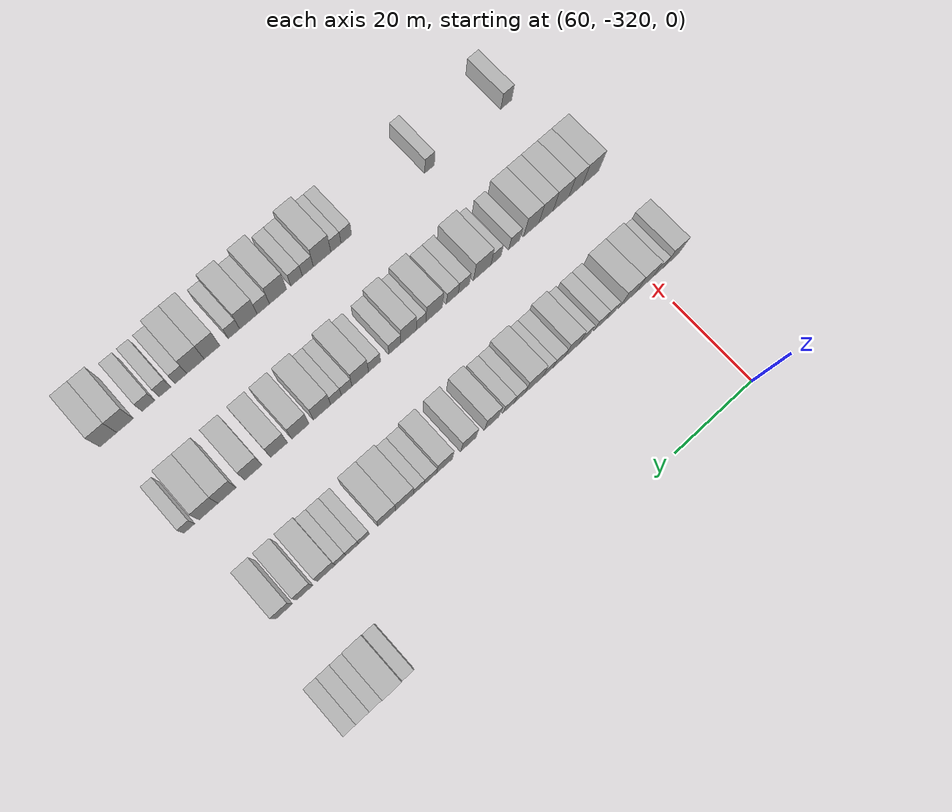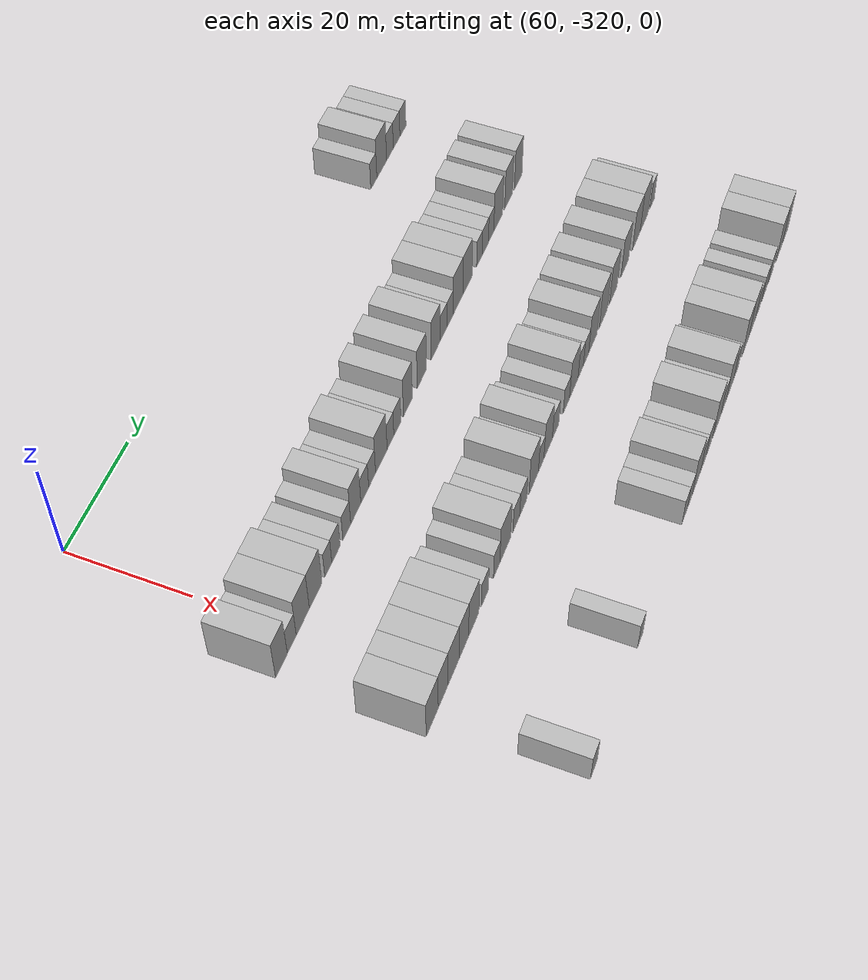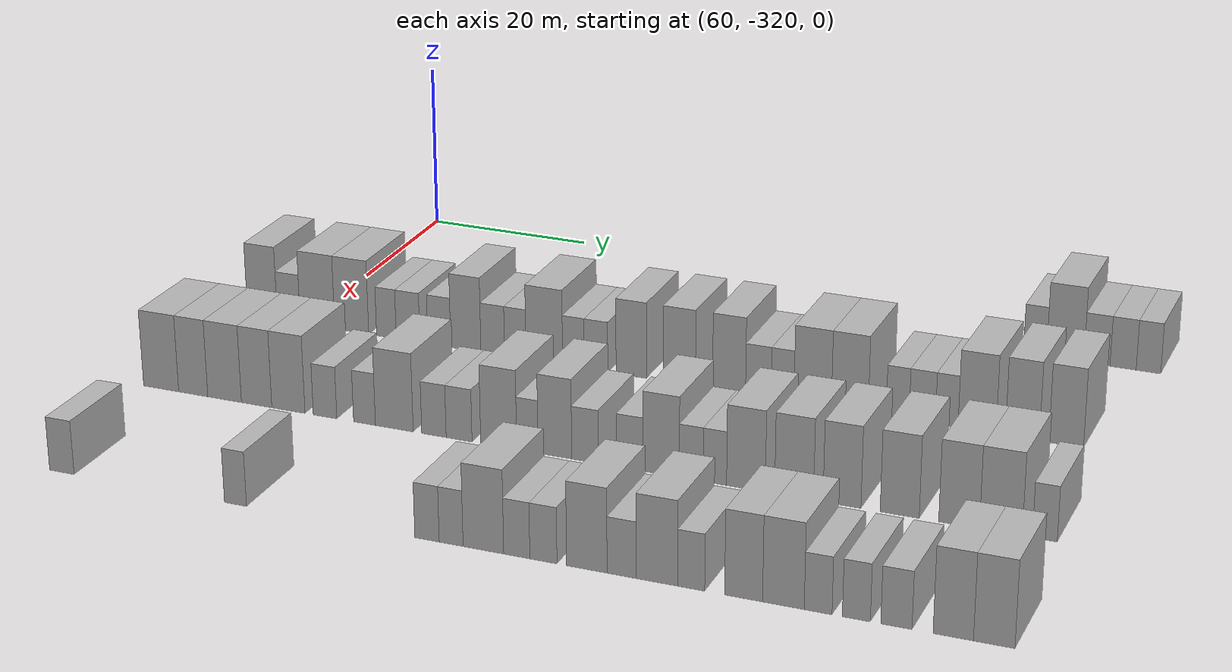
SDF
<sdf version="1.6">
 <world name="default">
  <model name="building_433">
   <static>1</static>
   <pose>69.0000 -239.2810 0 0.000000 0.000000 0.000000</pose>
   <link name="link">
    <pose>0 0 3.00 0 0 0</pose>
    <collision name="collision"><geometry><box><size>10.0000 2.6470 6.0000</size></box></geometry></collision>
    <visual name="visual">
     <cast_shadows>0</cast_shadows>
     <geometry><box><size>10.0000 2.6470 6.0000</size></box></geometry>
     <material>
      <script>
       <uri>model://HANNAS_wall/materials/scripts</uri>
       <uri>model://HANNAS_wall/materials/textures</uri>
       <name>vrc/HANNAS_wall</name>
      </script>
     </material>
    </visual>
   </link>
  </model>
  <model name="building_434">
   <static>1</static>
   <pose>69.0000 -235.8246 0 0.000000 0.000000 0.000000</pose>
   <link name="link">
    <pose>0 0 4.50 0 0 0</pose>
    <collision name="collision"><geometry><box><size>10.0000 4.2658 9.0000</size></box></geometry></collision>
    <visual name="visual">
     <cast_shadows>0</cast_shadows>
     <geometry><box><size>10.0000 4.2658 9.0000</size></box></geometry>
     <material>
      <script>
       <uri>model://HANNAS_wall/materials/scripts</uri>
       <uri>model://HANNAS_wall/materials/textures</uri>
       <name>vrc/HANNAS_wall</name>
      </script>
     </material>
    </visual>
   </link>
  </model>
  <model name="building_435">
   <static>1</static>
   <pose>69.0000 -232.2109 0 0.000000 0.000000 0.000000</pose>
   <link name="link">
    <pose>0 0 3.00 0 0 0</pose>
    <collision name="collision"><geometry><box><size>10.0000 2.9615 6.0000</size></box></geometry></collision>
    <visual name="visual">
     <cast_shadows>0</cast_shadows>
     <geometry><box><size>10.0000 2.9615 6.0000</size></box></geometry>
     <material>
      <script>
       <uri>model://HANNAS_wall/materials/scripts</uri>
       <uri>model://HANNAS_wall/materials/textures</uri>
       <name>vrc/HANNAS_wall</name>
      </script>
     </material>
    </visual>
   </link>
  </model>
  <model name="building_436">
   <static>1</static>
   <pose>69.0000 -229.2558 0 0.000000 0.000000 0.000000</pose>
   <link name="link">
    <pose>0 0 3.00 0 0 0</pose>
    <collision name="collision"><geometry><box><size>10.0000 2.9486 6.0000</size></box></geometry></collision>
    <visual name="visual">
     <cast_shadows>0</cast_shadows>
     <geometry><box><size>10.0000 2.9486 6.0000</size></box></geometry>
     <material>
      <script>
       <uri>model://HANNAS_wall/materials/scripts</uri>
       <uri>model://HANNAS_wall/materials/textures</uri>
       <name>vrc/HANNAS_wall</name>
      </script>
     </material>
    </visual>
   </link>
  </model>
  <model name="building_437">
   <static>1</static>
   <pose>69.0000 -226.4061 0 0.000000 0.000000 0.000000</pose>
   <link name="link">
    <pose>0 0 3.00 0 0 0</pose>
    <collision name="collision"><geometry><box><size>10.0000 2.7508 6.0000</size></box></geometry></collision>
    <visual name="visual">
     <cast_shadows>0</cast_shadows>
     <geometry><box><size>10.0000 2.7508 6.0000</size></box></geometry>
     <material>
      <script>
       <uri>model://HANNAS_wall/materials/scripts</uri>
       <uri>model://HANNAS_wall/materials/textures</uri>
       <name>vrc/HANNAS_wall</name>
      </script>
     </material>
    </visual>
   </link>
  </model>
  <model name="building_587">
   <static>1</static>
   <pose>91.0000 -325.4623 0 0.000000 0.000000 0.000000</pose>
   <link name="link">
    <pose>0 0 4.50 0 0 0</pose>
    <collision name="collision"><geometry><box><size>10.0000 3.8880 9.0000</size></box></geometry></collision>
    <visual name="visual">
     <cast_shadows>0</cast_shadows>
     <geometry><box><size>10.0000 3.8880 9.0000</size></box></geometry>
     <material>
      <script>
       <uri>model://HANNAS_wall/materials/scripts</uri>
       <uri>model://HANNAS_wall/materials/textures</uri>
       <name>vrc/HANNAS_wall</name>
      </script>
     </material>
    </visual>
   </link>
  </model>
  <model name="building_588">
   <static>1</static>
   <pose>91.0000 -322.0271 0 0.000000 0.000000 0.000000</pose>
   <link name="link">
    <pose>0 0 3.00 0 0 0</pose>
    <collision name="collision"><geometry><box><size>10.0000 2.9823 6.0000</size></box></geometry></collision>
    <visual name="visual">
     <cast_shadows>0</cast_shadows>
     <geometry><box><size>10.0000 2.9823 6.0000</size></box></geometry>
     <material>
      <script>
       <uri>model://HANNAS_wall/materials/scripts</uri>
       <uri>model://HANNAS_wall/materials/textures</uri>
       <name>vrc/HANNAS_wall</name>
      </script>
     </material>
    </visual>
   </link>
  </model>
  <model name="building_589">
   <static>1</static>
   <pose>91.0000 -318.3055 0 0.000000 0.000000 0.000000</pose>
   <link name="link">
    <pose>0 0 4.50 0 0 0</pose>
    <collision name="collision"><geometry><box><size>10.0000 4.4608 9.0000</size></box></geometry></collision>
    <visual name="visual">
     <cast_shadows>0</cast_shadows>
     <geometry><box><size>10.0000 4.4608 9.0000</size></box></geometry>
     <material>
      <script>
       <uri>model://HANNAS_wall/materials/scripts</uri>
       <uri>model://HANNAS_wall/materials/textures</uri>
       <name>vrc/HANNAS_wall</name>
      </script>
     </material>
    </visual>
   </link>
  </model>
  <model name="building_590">
   <static>1</static>
   <pose>91.0000 -313.8993 0 0.000000 0.000000 0.000000</pose>
   <link name="link">
    <pose>0 0 4.50 0 0 0</pose>
    <collision name="collision"><geometry><box><size>10.0000 4.3515 9.0000</size></box></geometry></collision>
    <visual name="visual">
     <cast_shadows>0</cast_shadows>
     <geometry><box><size>10.0000 4.3515 9.0000</size></box></geometry>
     <material>
      <script>
       <uri>model://HANNAS_wall/materials/scripts</uri>
       <uri>model://HANNAS_wall/materials/textures</uri>
       <name>vrc/HANNAS_wall</name>
      </script>
     </material>
    </visual>
   </link>
  </model>
  <model name="building_591">
   <static>1</static>
   <pose>91.0000 -309.4778 0 0.000000 0.000000 0.000000</pose>
   <link name="link">
    <pose>0 0 3.00 0 0 0</pose>
    <collision name="collision"><geometry><box><size>10.0000 2.4915 6.0000</size></box></geometry></collision>
    <visual name="visual">
     <cast_shadows>0</cast_shadows>
     <geometry><box><size>10.0000 2.4915 6.0000</size></box></geometry>
     <material>
      <script>
       <uri>model://HANNAS_wall/materials/scripts</uri>
       <uri>model://HANNAS_wall/materials/textures</uri>
       <name>vrc/HANNAS_wall</name>
      </script>
     </material>
    </visual>
   </link>
  </model>
  <model name="building_592">
   <static>1</static>
   <pose>91.0000 -306.7409 0 0.000000 0.000000 0.000000</pose>
   <link name="link">
    <pose>0 0 3.00 0 0 0</pose>
    <collision name="collision"><geometry><box><size>10.0000 2.9823 6.0000</size></box></geometry></collision>
    <visual name="visual">
     <cast_shadows>0</cast_shadows>
     <geometry><box><size>10.0000 2.9823 6.0000</size></box></geometry>
     <material>
      <script>
       <uri>model://HANNAS_wall/materials/scripts</uri>
       <uri>model://HANNAS_wall/materials/textures</uri>
       <name>vrc/HANNAS_wall</name>
      </script>
     </material>
    </visual>
   </link>
  </model>
  <model name="building_593">
   <static>1</static>
   <pose>91.0000 -302.8142 0 0.000000 0.000000 0.000000</pose>
   <link name="link">
    <pose>0 0 3.00 0 0 0</pose>
    <collision name="collision"><geometry><box><size>10.0000 2.8712 6.0000</size></box></geometry></collision>
    <visual name="visual">
     <cast_shadows>0</cast_shadows>
     <geometry><box><size>10.0000 2.8712 6.0000</size></box></geometry>
     <material>
      <script>
       <uri>model://HANNAS_wall/materials/scripts</uri>
       <uri>model://HANNAS_wall/materials/textures</uri>
       <name>vrc/HANNAS_wall</name>
      </script>
     </material>
    </visual>
   </link>
  </model>
  <model name="building_594">
   <static>1</static>
   <pose>91.0000 -299.5078 0 0.000000 0.000000 0.000000</pose>
   <link name="link">
    <pose>0 0 4.50 0 0 0</pose>
    <collision name="collision"><geometry><box><size>10.0000 3.7418 9.0000</size></box></geometry></collision>
    <visual name="visual">
     <cast_shadows>0</cast_shadows>
     <geometry><box><size>10.0000 3.7418 9.0000</size></box></geometry>
     <material>
      <script>
       <uri>model://HANNAS_wall/materials/scripts</uri>
       <uri>model://HANNAS_wall/materials/textures</uri>
       <name>vrc/HANNAS_wall</name>
      </script>
     </material>
    </visual>
   </link>
  </model>
  <model name="building_595">
   <static>1</static>
   <pose>91.0000 -296.1790 0 0.000000 0.000000 0.000000</pose>
   <link name="link">
    <pose>0 0 3.00 0 0 0</pose>
    <collision name="collision"><geometry><box><size>10.0000 2.9157 6.0000</size></box></geometry></collision>
    <visual name="visual">
     <cast_shadows>0</cast_shadows>
     <geometry><box><size>10.0000 2.9157 6.0000</size></box></geometry>
     <material>
      <script>
       <uri>model://HANNAS_wall/materials/scripts</uri>
       <uri>model://HANNAS_wall/materials/textures</uri>
       <name>vrc/HANNAS_wall</name>
      </script>
     </material>
    </visual>
   </link>
  </model>
  <model name="building_596">
   <static>1</static>
   <pose>91.0000 -293.4072 0 0.000000 0.000000 0.000000</pose>
   <link name="link">
    <pose>0 0 3.00 0 0 0</pose>
    <collision name="collision"><geometry><box><size>10.0000 2.6279 6.0000</size></box></geometry></collision>
    <visual name="visual">
     <cast_shadows>0</cast_shadows>
     <geometry><box><size>10.0000 2.6279 6.0000</size></box></geometry>
     <material>
      <script>
       <uri>model://HANNAS_wall/materials/scripts</uri>
       <uri>model://HANNAS_wall/materials/textures</uri>
       <name>vrc/HANNAS_wall</name>
      </script>
     </material>
    </visual>
   </link>
  </model>
  <model name="building_597">
   <static>1</static>
   <pose>91.0000 -289.8665 0 0.000000 0.000000 0.000000</pose>
   <link name="link">
    <pose>0 0 4.50 0 0 0</pose>
    <collision name="collision"><geometry><box><size>10.0000 4.4535 9.0000</size></box></geometry></collision>
    <visual name="visual">
     <cast_shadows>0</cast_shadows>
     <geometry><box><size>10.0000 4.4535 9.0000</size></box></geometry>
     <material>
      <script>
       <uri>model://HANNAS_wall/materials/scripts</uri>
       <uri>model://HANNAS_wall/materials/textures</uri>
       <name>vrc/HANNAS_wall</name>
      </script>
     </material>
    </visual>
   </link>
  </model>
  <model name="building_598">
   <static>1</static>
   <pose>91.0000 -286.3294 0 0.000000 0.000000 0.000000</pose>
   <link name="link">
    <pose>0 0 3.00 0 0 0</pose>
    <collision name="collision"><geometry><box><size>10.0000 2.6208 6.0000</size></box></geometry></collision>
    <visual name="visual">
     <cast_shadows>0</cast_shadows>
     <geometry><box><size>10.0000 2.6208 6.0000</size></box></geometry>
     <material>
      <script>
       <uri>model://HANNAS_wall/materials/scripts</uri>
       <uri>model://HANNAS_wall/materials/textures</uri>
       <name>vrc/HANNAS_wall</name>
      </script>
     </material>
    </visual>
   </link>
  </model>
  <model name="building_599">
   <static>1</static>
   <pose>91.0000 -283.6147 0 0.000000 0.000000 0.000000</pose>
   <link name="link">
    <pose>0 0 3.00 0 0 0</pose>
    <collision name="collision"><geometry><box><size>10.0000 2.8085 6.0000</size></box></geometry></collision>
    <visual name="visual">
     <cast_shadows>0</cast_shadows>
     <geometry><box><size>10.0000 2.8085 6.0000</size></box></geometry>
     <material>
      <script>
       <uri>model://HANNAS_wall/materials/scripts</uri>
       <uri>model://HANNAS_wall/materials/textures</uri>
       <name>vrc/HANNAS_wall</name>
      </script>
     </material>
    </visual>
   </link>
  </model>
  <model name="building_600">
   <static>1</static>
   <pose>91.0000 -279.4072 0 0.000000 0.000000 0.000000</pose>
   <link name="link">
    <pose>0 0 4.50 0 0 0</pose>
    <collision name="collision"><geometry><box><size>10.0000 3.6065 9.0000</size></box></geometry></collision>
    <visual name="visual">
     <cast_shadows>0</cast_shadows>
     <geometry><box><size>10.0000 3.6065 9.0000</size></box></geometry>
     <material>
      <script>
       <uri>model://HANNAS_wall/materials/scripts</uri>
       <uri>model://HANNAS_wall/materials/textures</uri>
       <name>vrc/HANNAS_wall</name>
      </script>
     </material>
    </visual>
   </link>
  </model>
  <model name="building_601">
   <static>1</static>
   <pose>91.0000 -273.7183 0 0.000000 0.000000 0.000000</pose>
   <link name="link">
    <pose>0 0 4.50 0 0 0</pose>
    <collision name="collision"><geometry><box><size>10.0000 3.7714 9.0000</size></box></geometry></collision>
    <visual name="visual">
     <cast_shadows>0</cast_shadows>
     <geometry><box><size>10.0000 3.7714 9.0000</size></box></geometry>
     <material>
      <script>
       <uri>model://HANNAS_wall/materials/scripts</uri>
       <uri>model://HANNAS_wall/materials/textures</uri>
       <name>vrc/HANNAS_wall</name>
      </script>
     </material>
    </visual>
   </link>
  </model>
  <model name="building_602">
   <static>1</static>
   <pose>91.0000 -267.9216 0 0.000000 0.000000 0.000000</pose>
   <link name="link">
    <pose>0 0 4.50 0 0 0</pose>
    <collision name="collision"><geometry><box><size>10.0000 3.8219 9.0000</size></box></geometry></collision>
    <visual name="visual">
     <cast_shadows>0</cast_shadows>
     <geometry><box><size>10.0000 3.8219 9.0000</size></box></geometry>
     <material>
      <script>
       <uri>model://HANNAS_wall/materials/scripts</uri>
       <uri>model://HANNAS_wall/materials/textures</uri>
       <name>vrc/HANNAS_wall</name>
      </script>
     </material>
    </visual>
   </link>
  </model>
  <model name="building_603">
   <static>1</static>
   <pose>91.0000 -264.5409 0 0.000000 0.000000 0.000000</pose>
   <link name="link">
    <pose>0 0 3.00 0 0 0</pose>
    <collision name="collision"><geometry><box><size>10.0000 2.9395 6.0000</size></box></geometry></collision>
    <visual name="visual">
     <cast_shadows>0</cast_shadows>
     <geometry><box><size>10.0000 2.9395 6.0000</size></box></geometry>
     <material>
      <script>
       <uri>model://HANNAS_wall/materials/scripts</uri>
       <uri>model://HANNAS_wall/materials/textures</uri>
       <name>vrc/HANNAS_wall</name>
      </script>
     </material>
    </visual>
   </link>
  </model>
  <model name="building_604">
   <static>1</static>
   <pose>91.0000 -261.7627 0 0.000000 0.000000 0.000000</pose>
   <link name="link">
    <pose>0 0 3.00 0 0 0</pose>
    <collision name="collision"><geometry><box><size>10.0000 2.6169 6.0000</size></box></geometry></collision>
    <visual name="visual">
     <cast_shadows>0</cast_shadows>
     <geometry><box><size>10.0000 2.6169 6.0000</size></box></geometry>
     <material>
      <script>
       <uri>model://HANNAS_wall/materials/scripts</uri>
       <uri>model://HANNAS_wall/materials/textures</uri>
       <name>vrc/HANNAS_wall</name>
      </script>
     </material>
    </visual>
   </link>
  </model>
  <model name="building_605">
   <static>1</static>
   <pose>91.0000 -258.3288 0 0.000000 0.000000 0.000000</pose>
   <link name="link">
    <pose>0 0 4.50 0 0 0</pose>
    <collision name="collision"><geometry><box><size>10.0000 4.2509 9.0000</size></box></geometry></collision>
    <visual name="visual">
     <cast_shadows>0</cast_shadows>
     <geometry><box><size>10.0000 4.2509 9.0000</size></box></geometry>
     <material>
      <script>
       <uri>model://HANNAS_wall/materials/scripts</uri>
       <uri>model://HANNAS_wall/materials/textures</uri>
       <name>vrc/HANNAS_wall</name>
      </script>
     </material>
    </visual>
   </link>
  </model>
  <model name="building_606">
   <static>1</static>
   <pose>91.0000 -254.1293 0 0.000000 0.000000 0.000000</pose>
   <link name="link">
    <pose>0 0 4.50 0 0 0</pose>
    <collision name="collision"><geometry><box><size>10.0000 4.1482 9.0000</size></box></geometry></collision>
    <visual name="visual">
     <cast_shadows>0</cast_shadows>
     <geometry><box><size>10.0000 4.1482 9.0000</size></box></geometry>
     <material>
      <script>
       <uri>model://HANNAS_wall/materials/scripts</uri>
       <uri>model://HANNAS_wall/materials/textures</uri>
       <name>vrc/HANNAS_wall</name>
      </script>
     </material>
    </visual>
   </link>
  </model>
  <model name="building_607">
   <static>1</static>
   <pose>91.0000 -248.7811 0 0.000000 0.000000 0.000000</pose>
   <link name="link">
    <pose>0 0 3.00 0 0 0</pose>
    <collision name="collision"><geometry><box><size>10.0000 2.5482 6.0000</size></box></geometry></collision>
    <visual name="visual">
     <cast_shadows>0</cast_shadows>
     <geometry><box><size>10.0000 2.5482 6.0000</size></box></geometry>
     <material>
      <script>
       <uri>model://HANNAS_wall/materials/scripts</uri>
       <uri>model://HANNAS_wall/materials/textures</uri>
       <name>vrc/HANNAS_wall</name>
      </script>
     </material>
    </visual>
   </link>
  </model>
  <model name="building_608">
   <static>1</static>
   <pose>91.0000 -246.0535 0 0.000000 0.000000 0.000000</pose>
   <link name="link">
    <pose>0 0 3.00 0 0 0</pose>
    <collision name="collision"><geometry><box><size>10.0000 2.9070 6.0000</size></box></geometry></collision>
    <visual name="visual">
     <cast_shadows>0</cast_shadows>
     <geometry><box><size>10.0000 2.9070 6.0000</size></box></geometry>
     <material>
      <script>
       <uri>model://HANNAS_wall/materials/scripts</uri>
       <uri>model://HANNAS_wall/materials/textures</uri>
       <name>vrc/HANNAS_wall</name>
      </script>
     </material>
    </visual>
   </link>
  </model>
  <model name="building_609">
   <static>1</static>
   <pose>91.0000 -243.3573 0 0.000000 0.000000 0.000000</pose>
   <link name="link">
    <pose>0 0 3.00 0 0 0</pose>
    <collision name="collision"><geometry><box><size>10.0000 2.4854 6.0000</size></box></geometry></collision>
    <visual name="visual">
     <cast_shadows>0</cast_shadows>
     <geometry><box><size>10.0000 2.4854 6.0000</size></box></geometry>
     <material>
      <script>
       <uri>model://HANNAS_wall/materials/scripts</uri>
       <uri>model://HANNAS_wall/materials/textures</uri>
       <name>vrc/HANNAS_wall</name>
      </script>
     </material>
    </visual>
   </link>
  </model>
  <model name="building_610">
   <static>1</static>
   <pose>91.0000 -240.0427 0 0.000000 0.000000 0.000000</pose>
   <link name="link">
    <pose>0 0 4.50 0 0 0</pose>
    <collision name="collision"><geometry><box><size>10.0000 4.1438 9.0000</size></box></geometry></collision>
    <visual name="visual">
     <cast_shadows>0</cast_shadows>
     <geometry><box><size>10.0000 4.1438 9.0000</size></box></geometry>
     <material>
      <script>
       <uri>model://HANNAS_wall/materials/scripts</uri>
       <uri>model://HANNAS_wall/materials/textures</uri>
       <name>vrc/HANNAS_wall</name>
      </script>
     </material>
    </visual>
   </link>
  </model>
  <model name="building_611">
   <static>1</static>
   <pose>91.0000 -235.1330 0 0.000000 0.000000 0.000000</pose>
   <link name="link">
    <pose>0 0 4.50 0 0 0</pose>
    <collision name="collision"><geometry><box><size>10.0000 3.6757 9.0000</size></box></geometry></collision>
    <visual name="visual">
     <cast_shadows>0</cast_shadows>
     <geometry><box><size>10.0000 3.6757 9.0000</size></box></geometry>
     <material>
      <script>
       <uri>model://HANNAS_wall/materials/scripts</uri>
       <uri>model://HANNAS_wall/materials/textures</uri>
       <name>vrc/HANNAS_wall</name>
      </script>
     </material>
    </visual>
   </link>
  </model>
  <model name="building_612">
   <static>1</static>
   <pose>91.0000 -230.4382 0 0.000000 0.000000 0.000000</pose>
   <link name="link">
    <pose>0 0 4.50 0 0 0</pose>
    <collision name="collision"><geometry><box><size>10.0000 3.7139 9.0000</size></box></geometry></collision>
    <visual name="visual">
     <cast_shadows>0</cast_shadows>
     <geometry><box><size>10.0000 3.7139 9.0000</size></box></geometry>
     <material>
      <script>
       <uri>model://HANNAS_wall/materials/scripts</uri>
       <uri>model://HANNAS_wall/materials/textures</uri>
       <name>vrc/HANNAS_wall</name>
      </script>
     </material>
    </visual>
   </link>
  </model>
  <model name="building_778">
   <static>1</static>
   <pose>113.0000 -326.0092 0 0.000000 0.000000 0.000000</pose>
   <link name="link">
    <pose>0 0 4.50 0 0 0</pose>
    <collision name="collision"><geometry><box><size>10.0000 4.3843 9.0000</size></box></geometry></collision>
    <visual name="visual">
     <cast_shadows>0</cast_shadows>
     <geometry><box><size>10.0000 4.3843 9.0000</size></box></geometry>
     <material>
      <script>
       <uri>model://HANNAS_wall/materials/scripts</uri>
       <uri>model://HANNAS_wall/materials/textures</uri>
       <name>vrc/HANNAS_wall</name>
      </script>
     </material>
    </visual>
   </link>
  </model>
  <model name="building_779">
   <static>1</static>
   <pose>113.0000 -322.0069 0 0.000000 0.000000 0.000000</pose>
   <link name="link">
    <pose>0 0 4.50 0 0 0</pose>
    <collision name="collision"><geometry><box><size>10.0000 3.6201 9.0000</size></box></geometry></collision>
    <visual name="visual">
     <cast_shadows>0</cast_shadows>
     <geometry><box><size>10.0000 3.6201 9.0000</size></box></geometry>
     <material>
      <script>
       <uri>model://HANNAS_wall/materials/scripts</uri>
       <uri>model://HANNAS_wall/materials/textures</uri>
       <name>vrc/HANNAS_wall</name>
      </script>
     </material>
    </visual>
   </link>
  </model>
  <model name="building_780">
   <static>1</static>
   <pose>113.0000 -318.1269 0 0.000000 0.000000 0.000000</pose>
   <link name="link">
    <pose>0 0 4.50 0 0 0</pose>
    <collision name="collision"><geometry><box><size>10.0000 4.1400 9.0000</size></box></geometry></collision>
    <visual name="visual">
     <cast_shadows>0</cast_shadows>
     <geometry><box><size>10.0000 4.1400 9.0000</size></box></geometry>
     <material>
      <script>
       <uri>model://HANNAS_wall/materials/scripts</uri>
       <uri>model://HANNAS_wall/materials/textures</uri>
       <name>vrc/HANNAS_wall</name>
      </script>
     </material>
    </visual>
   </link>
  </model>
  <model name="building_781">
   <static>1</static>
   <pose>113.0000 -314.2006 0 0.000000 0.000000 0.000000</pose>
   <link name="link">
    <pose>0 0 4.50 0 0 0</pose>
    <collision name="collision"><geometry><box><size>10.0000 3.7126 9.0000</size></box></geometry></collision>
    <visual name="visual">
     <cast_shadows>0</cast_shadows>
     <geometry><box><size>10.0000 3.7126 9.0000</size></box></geometry>
     <material>
      <script>
       <uri>model://HANNAS_wall/materials/scripts</uri>
       <uri>model://HANNAS_wall/materials/textures</uri>
       <name>vrc/HANNAS_wall</name>
      </script>
     </material>
    </visual>
   </link>
  </model>
  <model name="building_782">
   <static>1</static>
   <pose>113.0000 -310.3344 0 0.000000 0.000000 0.000000</pose>
   <link name="link">
    <pose>0 0 4.50 0 0 0</pose>
    <collision name="collision"><geometry><box><size>10.0000 4.0197 9.0000</size></box></geometry></collision>
    <visual name="visual">
     <cast_shadows>0</cast_shadows>
     <geometry><box><size>10.0000 4.0197 9.0000</size></box></geometry>
     <material>
      <script>
       <uri>model://HANNAS_wall/materials/scripts</uri>
       <uri>model://HANNAS_wall/materials/textures</uri>
       <name>vrc/HANNAS_wall</name>
      </script>
     </material>
    </visual>
   </link>
  </model>
  <model name="building_783">
   <static>1</static>
   <pose>113.0000 -305.9140 0 0.000000 0.000000 0.000000</pose>
   <link name="link">
    <pose>0 0 3.00 0 0 0</pose>
    <collision name="collision"><geometry><box><size>10.0000 2.8210 6.0000</size></box></geometry></collision>
    <visual name="visual">
     <cast_shadows>0</cast_shadows>
     <geometry><box><size>10.0000 2.8210 6.0000</size></box></geometry>
     <material>
      <script>
       <uri>model://HANNAS_wall/materials/scripts</uri>
       <uri>model://HANNAS_wall/materials/textures</uri>
       <name>vrc/HANNAS_wall</name>
      </script>
     </material>
    </visual>
   </link>
  </model>
  <model name="building_784">
   <static>1</static>
   <pose>113.0000 -301.2077 0 0.000000 0.000000 0.000000</pose>
   <link name="link">
    <pose>0 0 3.00 0 0 0</pose>
    <collision name="collision"><geometry><box><size>10.0000 2.5917 6.0000</size></box></geometry></collision>
    <visual name="visual">
     <cast_shadows>0</cast_shadows>
     <geometry><box><size>10.0000 2.5917 6.0000</size></box></geometry>
     <material>
      <script>
       <uri>model://HANNAS_wall/materials/scripts</uri>
       <uri>model://HANNAS_wall/materials/textures</uri>
       <name>vrc/HANNAS_wall</name>
      </script>
     </material>
    </visual>
   </link>
  </model>
  <model name="building_785">
   <static>1</static>
   <pose>113.0000 -297.6912 0 0.000000 0.000000 0.000000</pose>
   <link name="link">
    <pose>0 0 4.50 0 0 0</pose>
    <collision name="collision"><geometry><box><size>10.0000 4.4413 9.0000</size></box></geometry></collision>
    <visual name="visual">
     <cast_shadows>0</cast_shadows>
     <geometry><box><size>10.0000 4.4413 9.0000</size></box></geometry>
     <material>
      <script>
       <uri>model://HANNAS_wall/materials/scripts</uri>
       <uri>model://HANNAS_wall/materials/textures</uri>
       <name>vrc/HANNAS_wall</name>
      </script>
     </material>
    </visual>
   </link>
  </model>
  <model name="building_786">
   <static>1</static>
   <pose>113.0000 -293.0510 0 0.000000 0.000000 0.000000</pose>
   <link name="link">
    <pose>0 0 3.00 0 0 0</pose>
    <collision name="collision"><geometry><box><size>10.0000 2.8390 6.0000</size></box></geometry></collision>
    <visual name="visual">
     <cast_shadows>0</cast_shadows>
     <geometry><box><size>10.0000 2.8390 6.0000</size></box></geometry>
     <material>
      <script>
       <uri>model://HANNAS_wall/materials/scripts</uri>
       <uri>model://HANNAS_wall/materials/textures</uri>
       <name>vrc/HANNAS_wall</name>
      </script>
     </material>
    </visual>
   </link>
  </model>
  <model name="building_787">
   <static>1</static>
   <pose>113.0000 -290.1336 0 0.000000 0.000000 0.000000</pose>
   <link name="link">
    <pose>0 0 3.00 0 0 0</pose>
    <collision name="collision"><geometry><box><size>10.0000 2.9959 6.0000</size></box></geometry></collision>
    <visual name="visual">
     <cast_shadows>0</cast_shadows>
     <geometry><box><size>10.0000 2.9959 6.0000</size></box></geometry>
     <material>
      <script>
       <uri>model://HANNAS_wall/materials/scripts</uri>
       <uri>model://HANNAS_wall/materials/textures</uri>
       <name>vrc/HANNAS_wall</name>
      </script>
     </material>
    </visual>
   </link>
  </model>
  <model name="building_788">
   <static>1</static>
   <pose>113.0000 -285.5783 0 0.000000 0.000000 0.000000</pose>
   <link name="link">
    <pose>0 0 4.50 0 0 0</pose>
    <collision name="collision"><geometry><box><size>10.0000 4.1147 9.0000</size></box></geometry></collision>
    <visual name="visual">
     <cast_shadows>0</cast_shadows>
     <geometry><box><size>10.0000 4.1147 9.0000</size></box></geometry>
     <material>
      <script>
       <uri>model://HANNAS_wall/materials/scripts</uri>
       <uri>model://HANNAS_wall/materials/textures</uri>
       <name>vrc/HANNAS_wall</name>
      </script>
     </material>
    </visual>
   </link>
  </model>
  <model name="building_789">
   <static>1</static>
   <pose>113.0000 -282.3070 0 0.000000 0.000000 0.000000</pose>
   <link name="link">
    <pose>0 0 3.00 0 0 0</pose>
    <collision name="collision"><geometry><box><size>10.0000 2.4277 6.0000</size></box></geometry></collision>
    <visual name="visual">
     <cast_shadows>0</cast_shadows>
     <geometry><box><size>10.0000 2.4277 6.0000</size></box></geometry>
     <material>
      <script>
       <uri>model://HANNAS_wall/materials/scripts</uri>
       <uri>model://HANNAS_wall/materials/textures</uri>
       <name>vrc/HANNAS_wall</name>
      </script>
     </material>
    </visual>
   </link>
  </model>
  <model name="building_790">
   <static>1</static>
   <pose>113.0000 -279.1964 0 0.000000 0.000000 0.000000</pose>
   <link name="link">
    <pose>0 0 4.50 0 0 0</pose>
    <collision name="collision"><geometry><box><size>10.0000 3.7936 9.0000</size></box></geometry></collision>
    <visual name="visual">
     <cast_shadows>0</cast_shadows>
     <geometry><box><size>10.0000 3.7936 9.0000</size></box></geometry>
     <material>
      <script>
       <uri>model://HANNAS_wall/materials/scripts</uri>
       <uri>model://HANNAS_wall/materials/textures</uri>
       <name>vrc/HANNAS_wall</name>
      </script>
     </material>
    </visual>
   </link>
  </model>
  <model name="building_791">
   <static>1</static>
   <pose>113.0000 -275.8133 0 0.000000 0.000000 0.000000</pose>
   <link name="link">
    <pose>0 0 3.00 0 0 0</pose>
    <collision name="collision"><geometry><box><size>10.0000 2.9725 6.0000</size></box></geometry></collision>
    <visual name="visual">
     <cast_shadows>0</cast_shadows>
     <geometry><box><size>10.0000 2.9725 6.0000</size></box></geometry>
     <material>
      <script>
       <uri>model://HANNAS_wall/materials/scripts</uri>
       <uri>model://HANNAS_wall/materials/textures</uri>
       <name>vrc/HANNAS_wall</name>
      </script>
     </material>
    </visual>
   </link>
  </model>
  <model name="building_792">
   <static>1</static>
   <pose>113.0000 -270.8619 0 0.000000 0.000000 0.000000</pose>
   <link name="link">
    <pose>0 0 3.00 0 0 0</pose>
    <collision name="collision"><geometry><box><size>10.0000 2.9303 6.0000</size></box></geometry></collision>
    <visual name="visual">
     <cast_shadows>0</cast_shadows>
     <geometry><box><size>10.0000 2.9303 6.0000</size></box></geometry>
     <material>
      <script>
       <uri>model://HANNAS_wall/materials/scripts</uri>
       <uri>model://HANNAS_wall/materials/textures</uri>
       <name>vrc/HANNAS_wall</name>
      </script>
     </material>
    </visual>
   </link>
  </model>
  <model name="building_793">
   <static>1</static>
   <pose>113.0000 -267.3908 0 0.000000 0.000000 0.000000</pose>
   <link name="link">
    <pose>0 0 4.50 0 0 0</pose>
    <collision name="collision"><geometry><box><size>10.0000 4.0120 9.0000</size></box></geometry></collision>
    <visual name="visual">
     <cast_shadows>0</cast_shadows>
     <geometry><box><size>10.0000 4.0120 9.0000</size></box></geometry>
     <material>
      <script>
       <uri>model://HANNAS_wall/materials/scripts</uri>
       <uri>model://HANNAS_wall/materials/textures</uri>
       <name>vrc/HANNAS_wall</name>
      </script>
     </material>
    </visual>
   </link>
  </model>
  <model name="building_794">
   <static>1</static>
   <pose>113.0000 -264.0948 0 0.000000 0.000000 0.000000</pose>
   <link name="link">
    <pose>0 0 3.00 0 0 0</pose>
    <collision name="collision"><geometry><box><size>10.0000 2.5801 6.0000</size></box></geometry></collision>
    <visual name="visual">
     <cast_shadows>0</cast_shadows>
     <geometry><box><size>10.0000 2.5801 6.0000</size></box></geometry>
     <material>
      <script>
       <uri>model://HANNAS_wall/materials/scripts</uri>
       <uri>model://HANNAS_wall/materials/textures</uri>
       <name>vrc/HANNAS_wall</name>
      </script>
     </material>
    </visual>
   </link>
  </model>
  <model name="building_795">
   <static>1</static>
   <pose>113.0000 -261.5320 0 0.000000 0.000000 0.000000</pose>
   <link name="link">
    <pose>0 0 3.00 0 0 0</pose>
    <collision name="collision"><geometry><box><size>10.0000 2.5454 6.0000</size></box></geometry></collision>
    <visual name="visual">
     <cast_shadows>0</cast_shadows>
     <geometry><box><size>10.0000 2.5454 6.0000</size></box></geometry>
     <material>
      <script>
       <uri>model://HANNAS_wall/materials/scripts</uri>
       <uri>model://HANNAS_wall/materials/textures</uri>
       <name>vrc/HANNAS_wall</name>
      </script>
     </material>
    </visual>
   </link>
  </model>
  <model name="building_796">
   <static>1</static>
   <pose>113.0000 -258.1829 0 0.000000 0.000000 0.000000</pose>
   <link name="link">
    <pose>0 0 4.50 0 0 0</pose>
    <collision name="collision"><geometry><box><size>10.0000 4.1528 9.0000</size></box></geometry></collision>
    <visual name="visual">
     <cast_shadows>0</cast_shadows>
     <geometry><box><size>10.0000 4.1528 9.0000</size></box></geometry>
     <material>
      <script>
       <uri>model://HANNAS_wall/materials/scripts</uri>
       <uri>model://HANNAS_wall/materials/textures</uri>
       <name>vrc/HANNAS_wall</name>
      </script>
     </material>
    </visual>
   </link>
  </model>
  <model name="building_797">
   <static>1</static>
   <pose>113.0000 -253.0435 0 0.000000 0.000000 0.000000</pose>
   <link name="link">
    <pose>0 0 4.50 0 0 0</pose>
    <collision name="collision"><geometry><box><size>10.0000 4.1262 9.0000</size></box></geometry></collision>
    <visual name="visual">
     <cast_shadows>0</cast_shadows>
     <geometry><box><size>10.0000 4.1262 9.0000</size></box></geometry>
     <material>
      <script>
       <uri>model://HANNAS_wall/materials/scripts</uri>
       <uri>model://HANNAS_wall/materials/textures</uri>
       <name>vrc/HANNAS_wall</name>
      </script>
     </material>
    </visual>
   </link>
  </model>
  <model name="building_798">
   <static>1</static>
   <pose>113.0000 -247.9941 0 0.000000 0.000000 0.000000</pose>
   <link name="link">
    <pose>0 0 4.50 0 0 0</pose>
    <collision name="collision"><geometry><box><size>10.0000 3.9726 9.0000</size></box></geometry></collision>
    <visual name="visual">
     <cast_shadows>0</cast_shadows>
     <geometry><box><size>10.0000 3.9726 9.0000</size></box></geometry>
     <material>
      <script>
       <uri>model://HANNAS_wall/materials/scripts</uri>
       <uri>model://HANNAS_wall/materials/textures</uri>
       <name>vrc/HANNAS_wall</name>
      </script>
     </material>
    </visual>
   </link>
  </model>
  <model name="building_799">
   <static>1</static>
   <pose>113.0000 -241.9930 0 0.000000 0.000000 0.000000</pose>
   <link name="link">
    <pose>0 0 4.50 0 0 0</pose>
    <collision name="collision"><geometry><box><size>10.0000 4.0295 9.0000</size></box></geometry></collision>
    <visual name="visual">
     <cast_shadows>0</cast_shadows>
     <geometry><box><size>10.0000 4.0295 9.0000</size></box></geometry>
     <material>
      <script>
       <uri>model://HANNAS_wall/materials/scripts</uri>
       <uri>model://HANNAS_wall/materials/textures</uri>
       <name>vrc/HANNAS_wall</name>
      </script>
     </material>
    </visual>
   </link>
  </model>
  <model name="building_800">
   <static>1</static>
   <pose>113.0000 -235.9060 0 0.000000 0.000000 0.000000</pose>
   <link name="link">
    <pose>0 0 4.50 0 0 0</pose>
    <collision name="collision"><geometry><box><size>10.0000 4.1444 9.0000</size></box></geometry></collision>
    <visual name="visual">
     <cast_shadows>0</cast_shadows>
     <geometry><box><size>10.0000 4.1444 9.0000</size></box></geometry>
     <material>
      <script>
       <uri>model://HANNAS_wall/materials/scripts</uri>
       <uri>model://HANNAS_wall/materials/textures</uri>
       <name>vrc/HANNAS_wall</name>
      </script>
     </material>
    </visual>
   </link>
  </model>
  <model name="building_801">
   <static>1</static>
   <pose>113.0000 -231.6771 0 0.000000 0.000000 0.000000</pose>
   <link name="link">
    <pose>0 0 4.50 0 0 0</pose>
    <collision name="collision"><geometry><box><size>10.0000 4.3134 9.0000</size></box></geometry></collision>
    <visual name="visual">
     <cast_shadows>0</cast_shadows>
     <geometry><box><size>10.0000 4.3134 9.0000</size></box></geometry>
     <material>
      <script>
       <uri>model://HANNAS_wall/materials/scripts</uri>
       <uri>model://HANNAS_wall/materials/textures</uri>
       <name>vrc/HANNAS_wall</name>
      </script>
     </material>
    </visual>
   </link>
  </model>
  <model name="building_802">
   <static>1</static>
   <pose>113.0000 -227.2768 0 0.000000 0.000000 0.000000</pose>
   <link name="link">
    <pose>0 0 3.00 0 0 0</pose>
    <collision name="collision"><geometry><box><size>10.0000 2.4872 6.0000</size></box></geometry></collision>
    <visual name="visual">
     <cast_shadows>0</cast_shadows>
     <geometry><box><size>10.0000 2.4872 6.0000</size></box></geometry>
     <material>
      <script>
       <uri>model://HANNAS_wall/materials/scripts</uri>
       <uri>model://HANNAS_wall/materials/textures</uri>
       <name>vrc/HANNAS_wall</name>
      </script>
     </material>
    </visual>
   </link>
  </model>
  <model name="building_953">
   <static>1</static>
   <pose>135.0000 -324.7273 0 0.000000 0.000000 0.000000</pose>
   <link name="link">
    <pose>0 0 3.00 0 0 0</pose>
    <collision name="collision"><geometry><box><size>10.0000 2.9007 6.0000</size></box></geometry></collision>
    <visual name="visual">
     <cast_shadows>0</cast_shadows>
     <geometry><box><size>10.0000 2.9007 6.0000</size></box></geometry>
     <material>
      <script>
       <uri>model://HANNAS_wall/materials/scripts</uri>
       <uri>model://HANNAS_wall/materials/textures</uri>
       <name>vrc/HANNAS_wall</name>
      </script>
     </material>
    </visual>
   </link>
  </model>
  <model name="building_954">
   <static>1</static>
   <pose>135.0000 -304.5399 0 0.000000 0.000000 0.000000</pose>
   <link name="link">
    <pose>0 0 3.00 0 0 0</pose>
    <collision name="collision"><geometry><box><size>10.0000 2.4914 6.0000</size></box></geometry></collision>
    <visual name="visual">
     <cast_shadows>0</cast_shadows>
     <geometry><box><size>10.0000 2.4914 6.0000</size></box></geometry>
     <material>
      <script>
       <uri>model://HANNAS_wall/materials/scripts</uri>
       <uri>model://HANNAS_wall/materials/textures</uri>
       <name>vrc/HANNAS_wall</name>
      </script>
     </material>
    </visual>
   </link>
  </model>
  <model name="building_955">
   <static>1</static>
   <pose>135.0000 -283.3601 0 0.000000 0.000000 0.000000</pose>
   <link name="link">
    <pose>0 0 3.00 0 0 0</pose>
    <collision name="collision"><geometry><box><size>10.0000 2.6228 6.0000</size></box></geometry></collision>
    <visual name="visual">
     <cast_shadows>0</cast_shadows>
     <geometry><box><size>10.0000 2.6228 6.0000</size></box></geometry>
     <material>
      <script>
       <uri>model://HANNAS_wall/materials/scripts</uri>
       <uri>model://HANNAS_wall/materials/textures</uri>
       <name>vrc/HANNAS_wall</name>
      </script>
     </material>
    </visual>
   </link>
  </model>
  <model name="building_956">
   <static>1</static>
   <pose>135.0000 -280.7694 0 0.000000 0.000000 0.000000</pose>
   <link name="link">
    <pose>0 0 3.00 0 0 0</pose>
    <collision name="collision"><geometry><box><size>10.0000 2.5586 6.0000</size></box></geometry></collision>
    <visual name="visual">
     <cast_shadows>0</cast_shadows>
     <geometry><box><size>10.0000 2.5586 6.0000</size></box></geometry>
     <material>
      <script>
       <uri>model://HANNAS_wall/materials/scripts</uri>
       <uri>model://HANNAS_wall/materials/textures</uri>
       <name>vrc/HANNAS_wall</name>
      </script>
     </material>
    </visual>
   </link>
  </model>
  <model name="building_957">
   <static>1</static>
   <pose>135.0000 -277.3330 0 0.000000 0.000000 0.000000</pose>
   <link name="link">
    <pose>0 0 4.50 0 0 0</pose>
    <collision name="collision"><geometry><box><size>10.0000 4.3142 9.0000</size></box></geometry></collision>
    <visual name="visual">
     <cast_shadows>0</cast_shadows>
     <geometry><box><size>10.0000 4.3142 9.0000</size></box></geometry>
     <material>
      <script>
       <uri>model://HANNAS_wall/materials/scripts</uri>
       <uri>model://HANNAS_wall/materials/textures</uri>
       <name>vrc/HANNAS_wall</name>
      </script>
     </material>
    </visual>
   </link>
  </model>
  <model name="building_958">
   <static>1</static>
   <pose>135.0000 -273.8017 0 0.000000 0.000000 0.000000</pose>
   <link name="link">
    <pose>0 0 3.00 0 0 0</pose>
    <collision name="collision"><geometry><box><size>10.0000 2.7485 6.0000</size></box></geometry></collision>
    <visual name="visual">
     <cast_shadows>0</cast_shadows>
     <geometry><box><size>10.0000 2.7485 6.0000</size></box></geometry>
     <material>
      <script>
       <uri>model://HANNAS_wall/materials/scripts</uri>
       <uri>model://HANNAS_wall/materials/textures</uri>
       <name>vrc/HANNAS_wall</name>
      </script>
     </material>
    </visual>
   </link>
  </model>
  <model name="building_959">
   <static>1</static>
   <pose>135.0000 -271.0094 0 0.000000 0.000000 0.000000</pose>
   <link name="link">
    <pose>0 0 3.00 0 0 0</pose>
    <collision name="collision"><geometry><box><size>10.0000 2.8361 6.0000</size></box></geometry></collision>
    <visual name="visual">
     <cast_shadows>0</cast_shadows>
     <geometry><box><size>10.0000 2.8361 6.0000</size></box></geometry>
     <material>
      <script>
       <uri>model://HANNAS_wall/materials/scripts</uri>
       <uri>model://HANNAS_wall/materials/textures</uri>
       <name>vrc/HANNAS_wall</name>
      </script>
     </material>
    </visual>
   </link>
  </model>
  <model name="building_960">
   <static>1</static>
   <pose>135.0000 -266.5013 0 0.000000 0.000000 0.000000</pose>
   <link name="link">
    <pose>0 0 4.50 0 0 0</pose>
    <collision name="collision"><geometry><box><size>10.0000 4.1800 9.0000</size></box></geometry></collision>
    <visual name="visual">
     <cast_shadows>0</cast_shadows>
     <geometry><box><size>10.0000 4.1800 9.0000</size></box></geometry>
     <material>
      <script>
       <uri>model://HANNAS_wall/materials/scripts</uri>
       <uri>model://HANNAS_wall/materials/textures</uri>
       <name>vrc/HANNAS_wall</name>
      </script>
     </material>
    </visual>
   </link>
  </model>
  <model name="building_961">
   <static>1</static>
   <pose>135.0000 -262.9276 0 0.000000 0.000000 0.000000</pose>
   <link name="link">
    <pose>0 0 3.00 0 0 0</pose>
    <collision name="collision"><geometry><box><size>10.0000 2.9673 6.0000</size></box></geometry></collision>
    <visual name="visual">
     <cast_shadows>0</cast_shadows>
     <geometry><box><size>10.0000 2.9673 6.0000</size></box></geometry>
     <material>
      <script>
       <uri>model://HANNAS_wall/materials/scripts</uri>
       <uri>model://HANNAS_wall/materials/textures</uri>
       <name>vrc/HANNAS_wall</name>
      </script>
     </material>
    </visual>
   </link>
  </model>
  <model name="building_962">
   <static>1</static>
   <pose>135.0000 -259.3388 0 0.000000 0.000000 0.000000</pose>
   <link name="link">
    <pose>0 0 4.50 0 0 0</pose>
    <collision name="collision"><geometry><box><size>10.0000 4.2104 9.0000</size></box></geometry></collision>
    <visual name="visual">
     <cast_shadows>0</cast_shadows>
     <geometry><box><size>10.0000 4.2104 9.0000</size></box></geometry>
     <material>
      <script>
       <uri>model://HANNAS_wall/materials/scripts</uri>
       <uri>model://HANNAS_wall/materials/textures</uri>
       <name>vrc/HANNAS_wall</name>
      </script>
     </material>
    </visual>
   </link>
  </model>
  <model name="building_963">
   <static>1</static>
   <pose>135.0000 -255.8670 0 0.000000 0.000000 0.000000</pose>
   <link name="link">
    <pose>0 0 3.00 0 0 0</pose>
    <collision name="collision"><geometry><box><size>10.0000 2.7332 6.0000</size></box></geometry></collision>
    <visual name="visual">
     <cast_shadows>0</cast_shadows>
     <geometry><box><size>10.0000 2.7332 6.0000</size></box></geometry>
     <material>
      <script>
       <uri>model://HANNAS_wall/materials/scripts</uri>
       <uri>model://HANNAS_wall/materials/textures</uri>
       <name>vrc/HANNAS_wall</name>
      </script>
     </material>
    </visual>
   </link>
  </model>
  <model name="building_964">
   <static>1</static>
   <pose>135.0000 -250.6219 0 0.000000 0.000000 0.000000</pose>
   <link name="link">
    <pose>0 0 4.50 0 0 0</pose>
    <collision name="collision"><geometry><box><size>10.0000 3.7570 9.0000</size></box></geometry></collision>
    <visual name="visual">
     <cast_shadows>0</cast_shadows>
     <geometry><box><size>10.0000 3.7570 9.0000</size></box></geometry>
     <material>
      <script>
       <uri>model://HANNAS_wall/materials/scripts</uri>
       <uri>model://HANNAS_wall/materials/textures</uri>
       <name>vrc/HANNAS_wall</name>
      </script>
     </material>
    </visual>
   </link>
  </model>
  <model name="building_965">
   <static>1</static>
   <pose>135.0000 -246.6964 0 0.000000 0.000000 0.000000</pose>
   <link name="link">
    <pose>0 0 4.50 0 0 0</pose>
    <collision name="collision"><geometry><box><size>10.0000 4.0940 9.0000</size></box></geometry></collision>
    <visual name="visual">
     <cast_shadows>0</cast_shadows>
     <geometry><box><size>10.0000 4.0940 9.0000</size></box></geometry>
     <material>
      <script>
       <uri>model://HANNAS_wall/materials/scripts</uri>
       <uri>model://HANNAS_wall/materials/textures</uri>
       <name>vrc/HANNAS_wall</name>
      </script>
     </material>
    </visual>
   </link>
  </model>
  <model name="building_966">
   <static>1</static>
   <pose>135.0000 -243.2945 0 0.000000 0.000000 0.000000</pose>
   <link name="link">
    <pose>0 0 3.00 0 0 0</pose>
    <collision name="collision"><geometry><box><size>10.0000 2.7098 6.0000</size></box></geometry></collision>
    <visual name="visual">
     <cast_shadows>0</cast_shadows>
     <geometry><box><size>10.0000 2.7098 6.0000</size></box></geometry>
     <material>
      <script>
       <uri>model://HANNAS_wall/materials/scripts</uri>
       <uri>model://HANNAS_wall/materials/textures</uri>
       <name>vrc/HANNAS_wall</name>
      </script>
     </material>
    </visual>
   </link>
  </model>
  <model name="building_967">
   <static>1</static>
   <pose>135.0000 -239.5902 0 0.000000 0.000000 0.000000</pose>
   <link name="link">
    <pose>0 0 3.00 0 0 0</pose>
    <collision name="collision"><geometry><box><size>10.0000 2.6987 6.0000</size></box></geometry></collision>
    <visual name="visual">
     <cast_shadows>0</cast_shadows>
     <geometry><box><size>10.0000 2.6987 6.0000</size></box></geometry>
     <material>
      <script>
       <uri>model://HANNAS_wall/materials/scripts</uri>
       <uri>model://HANNAS_wall/materials/textures</uri>
       <name>vrc/HANNAS_wall</name>
      </script>
     </material>
    </visual>
   </link>
  </model>
  <model name="building_968">
   <static>1</static>
   <pose>135.0000 -235.7486 0 0.000000 0.000000 0.000000</pose>
   <link name="link">
    <pose>0 0 3.00 0 0 0</pose>
    <collision name="collision"><geometry><box><size>10.0000 2.9845 6.0000</size></box></geometry></collision>
    <visual name="visual">
     <cast_shadows>0</cast_shadows>
     <geometry><box><size>10.0000 2.9845 6.0000</size></box></geometry>
     <material>
      <script>
       <uri>model://HANNAS_wall/materials/scripts</uri>
       <uri>model://HANNAS_wall/materials/textures</uri>
       <name>vrc/HANNAS_wall</name>
      </script>
     </material>
    </visual>
   </link>
  </model>
  <model name="building_969">
   <static>1</static>
   <pose>135.0000 -230.3572 0 0.000000 0.000000 0.000000</pose>
   <link name="link">
    <pose>0 0 4.50 0 0 0</pose>
    <collision name="collision"><geometry><box><size>10.0000 3.7983 9.0000</size></box></geometry></collision>
    <visual name="visual">
     <cast_shadows>0</cast_shadows>
     <geometry><box><size>10.0000 3.7983 9.0000</size></box></geometry>
     <material>
      <script>
       <uri>model://HANNAS_wall/materials/scripts</uri>
       <uri>model://HANNAS_wall/materials/textures</uri>
       <name>vrc/HANNAS_wall</name>
      </script>
     </material>
    </visual>
   </link>
  </model>
  <model name="building_970">
   <static>1</static>
   <pose>135.0000 -226.5229 0 0.000000 0.000000 0.000000</pose>
   <link name="link">
    <pose>0 0 4.50 0 0 0</pose>
    <collision name="collision"><geometry><box><size>10.0000 3.8704 9.0000</size></box></geometry></collision>
    <visual name="visual">
     <cast_shadows>0</cast_shadows>
     <geometry><box><size>10.0000 3.8704 9.0000</size></box></geometry>
     <material>
      <script>
       <uri>model://HANNAS_wall/materials/scripts</uri>
       <uri>model://HANNAS_wall/materials/textures</uri>
       <name>vrc/HANNAS_wall</name>
      </script>
     </material>
    </visual>
   </link>
  </model>
 </world>
</sdf>
